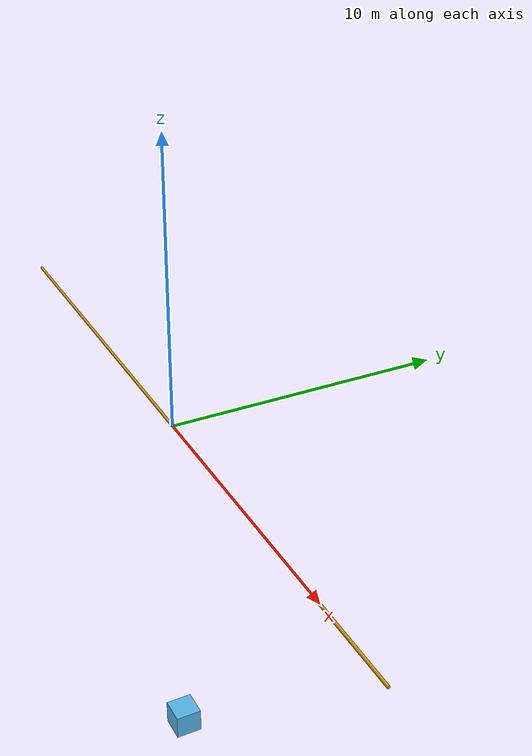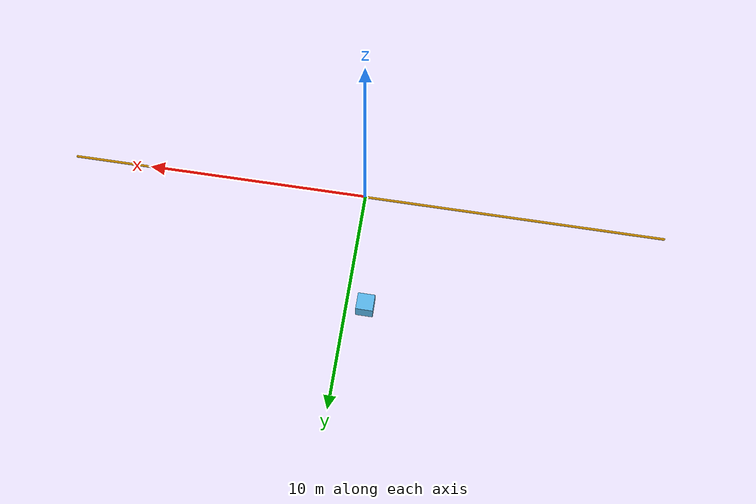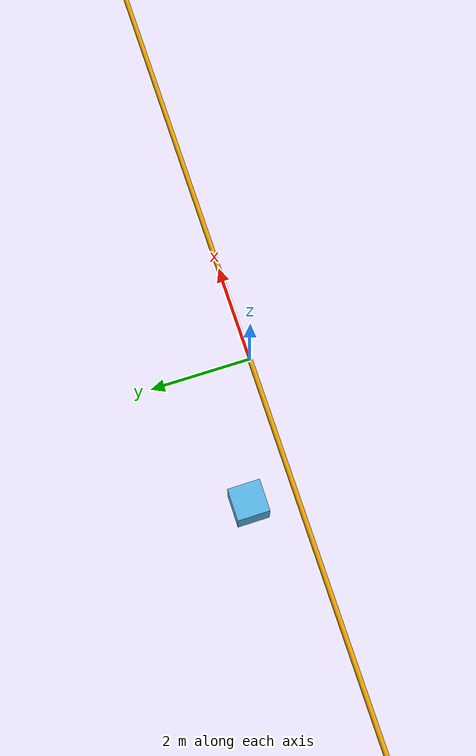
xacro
<?xml version="1.0"?>
<robot name="k_crane" xmlns:xacro="http://www.ros.org/wiki/xacro">

	<link name="payload_rope_link">
		<origin xyz="0 0 0" rpy="0 ${pi/2} 0"/>
		<inertial>
			<origin xyz="0 0 0" rpy="0 ${pi/2} 0"/>
			<geometry>
				<cylinder radius="0.05" length="27"/>
			</geometry>
			<mass value="0.1"/>
			<inertia
				ixx="0.001"
				ixy="0.001"
				ixz="0.001"
				iyy="0.001"
				iyz="0.001"
				izz="0.001"/>
		</inertial>
		<visual>
			<origin xyz="0 0 0" rpy="0 ${pi/2} 0"/>
			<geometry>
				<cylinder radius="0.05" length="27"/>
			</geometry>
		</visual>
		<collision>
			<origin xyz="0 0 0" rpy="0 ${pi/2} 0"/>
			<geometry>
				<cylinder radius="0.05" length="27"/>
			</geometry>
		</collision>
	</link>

	<link name="payload_body_link">
		<origin xyz="0 0 0" rpy="0 0 0"/>
		<inertial>
			<geometry>
				<box size="1 1 1"/>
			</geometry>
			<mass value="100"/>
			<inertia
				ixx="0.001"
				ixy="0.001"
				ixz="0.001"
				iyy="0.001"
				iyz="0.001"
				izz="0.001"/>
		</inertial>
		<visual>
			<geometry>
				<box size="1 1 1"/>
			</geometry>
		</visual>
		<collision>
			<geometry>
				<box size="1 1 1"/>
			</geometry>
		</collision>
	</link>

	<joint name="joint4payload" type="fixed">
		<parent link="payload_rope_link"/>
		<child  link="payload_body_link"/>
		<origin xyz="0 0 -13.5" rpy="0 0 0"/>
	</joint>

</robot>
